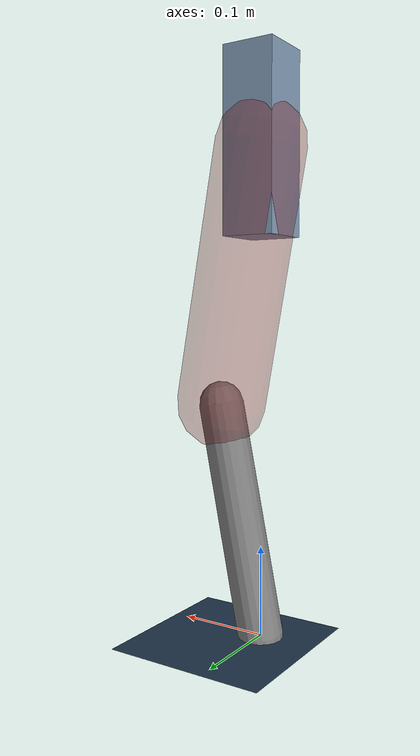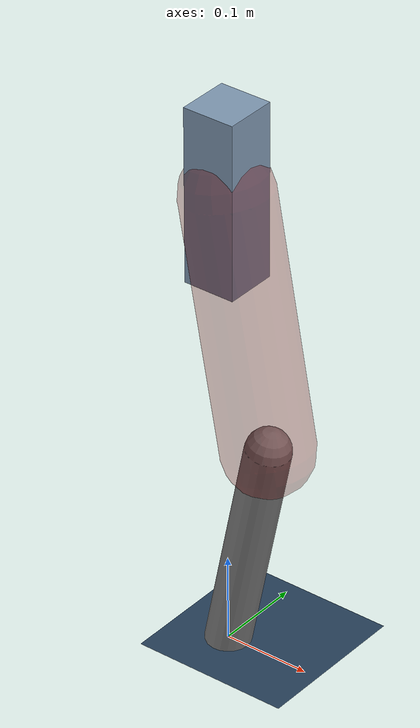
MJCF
<mujoco model="Hopper2D">
	<compiler inertiafromgeom="true" angle="radian" />
	<option timestep="0.001" integrator="implicit" cone="elliptic" solver="Newton" tolerance="1e-10" />

	<default>
		<geom contype="1" conaffinity="1" condim="3" friction="2 0.005 0.0001" solref="0.005 1" />
		<joint limited="true" damping="0.1" />
	</default>

	<asset>
		<texture name="skybox" type="skybox" builtin="gradient" rgb1=".4 .6 .8" rgb2="0 0 0" width="800" height="800" />
		<texture name="grid" type="2d" builtin="checker" rgb1=".1 .2 .3" rgb2=".2 .3 .4" width="300" height="300" mark="edge" markrgb=".2 .3 .4" />
		<material name="ground" texture="grid" texrepeat="1 1" texuniform="true" reflectance="0.1" />
		<material name="leg" rgba="0.5 0.6 0.7 1" />
	</asset>

	<worldbody>

		<geom name="floor" type="plane" size="5 5 0.25" material="ground" />

		<light directional="false" diffuse="0.8 0.8 0.8" specular="0.3 0.3 0.3" pos="0 0 2" dir="0 0 -1" />
		<light mode="targetbodycom" target="base" directional="false" diffuse="0.8 0.8 0.8" specular="0.3 0.3 0.3" pos="0 0 2" dir="0 0 -1" />

		<camera name="fixed" pos="0 -2 1" xyaxes="1 0 0 0 0 1" />
		<camera name="tracking" mode="trackcom" pos="0 -3 1" />

		<body name="root" pos="0 0 0.5400014407649762">
			<joint name="slide_x" type="slide" axis="1 0 0" range="-100 100" />
			<joint name="slide_z" type="slide" axis="0 0 1" range="0 10" />

			<body name="base" pos="0 0 0">
				<geom name="torso" type="box" size="0.03 0.03 0.1" mass="2.875" material="leg" />

				<body name="link1" pos="0 0 0" euler="0 1.3890018478407629 0">
					<joint type="hinge" axis="0 -1 0" pos="0 0 0" name="hinge1" limited="true" range="-3.14 3.14" stiffness="0" damping="0.1" />
					<geom name="thigh" type="capsule" fromto="0 0 0 0.28837934977761925 0 0" size="0.05" rgba="0.5 0 0 0.3" mass="0.9574863094218101" />

					<body name="link2" pos="0.28837934977761925 0 0" euler="0 0.3824231786968354 0">
						<joint type="hinge" axis="0 -1 0" pos="0 0 0" name="hinge2" limited="true" range="-3.14 3.14" stiffness="0" damping="0.1" />
						<geom name="shank" type="capsule" fromto="0 0 0 0.26162209098735706 0 0" size="0.025" mass="0.45209767278988566" />

					</body>
				</body>
			</body>
		</body>
	</worldbody>

	<actuator>
		<motor name="torque1" joint="hinge1" ctrlrange="-127.23239666582951 127.23239666582951" ctrllimited="true" gear="1" />
		<motor name="torque2" joint="hinge2" ctrlrange="-80.54046739191247 80.54046739191247" ctrllimited="true" gear="1" />
	</actuator>
</mujoco>
